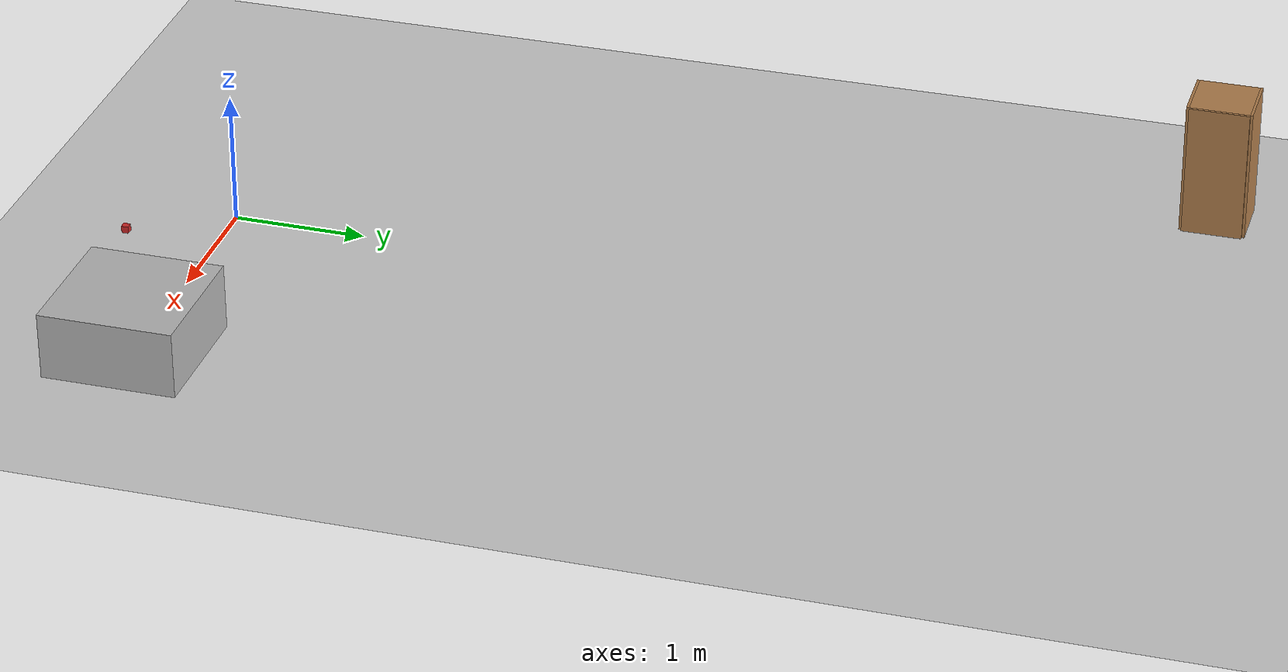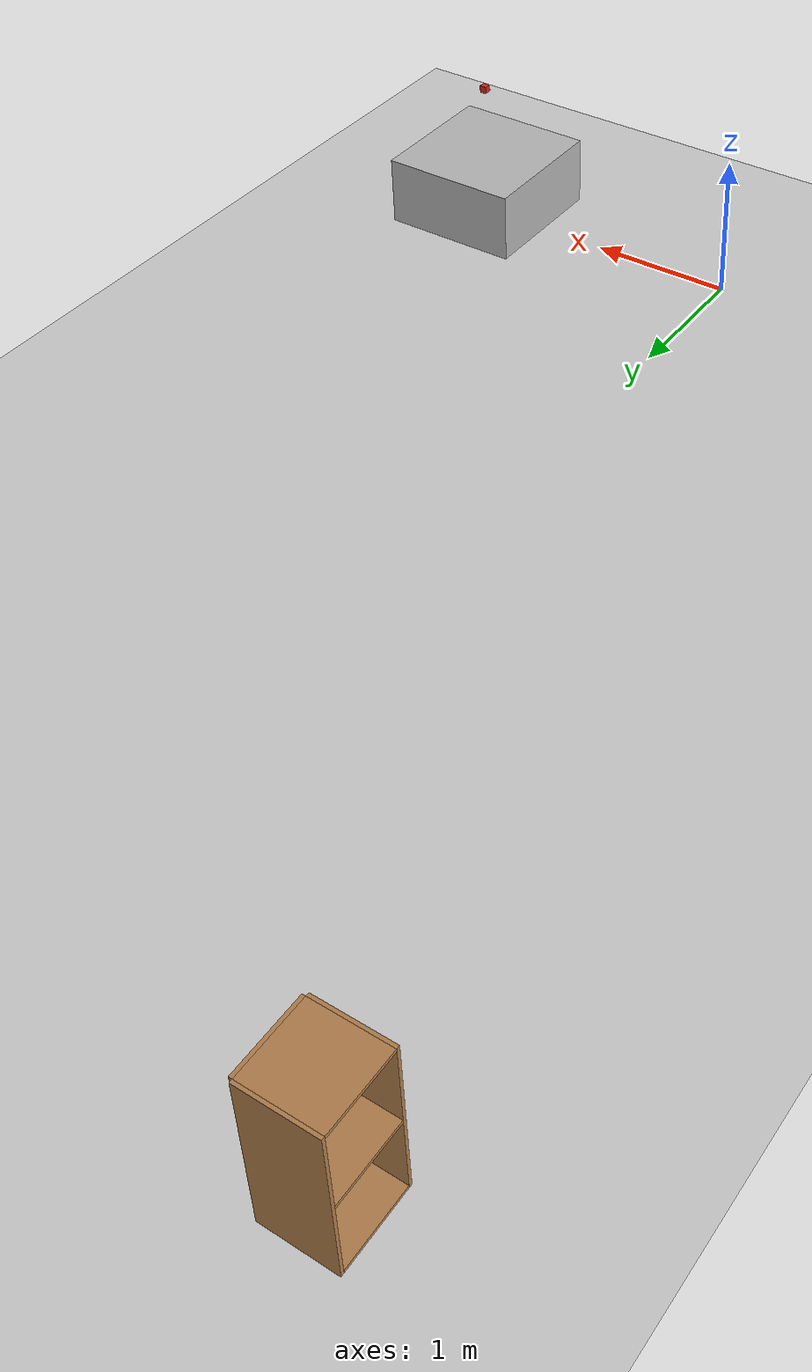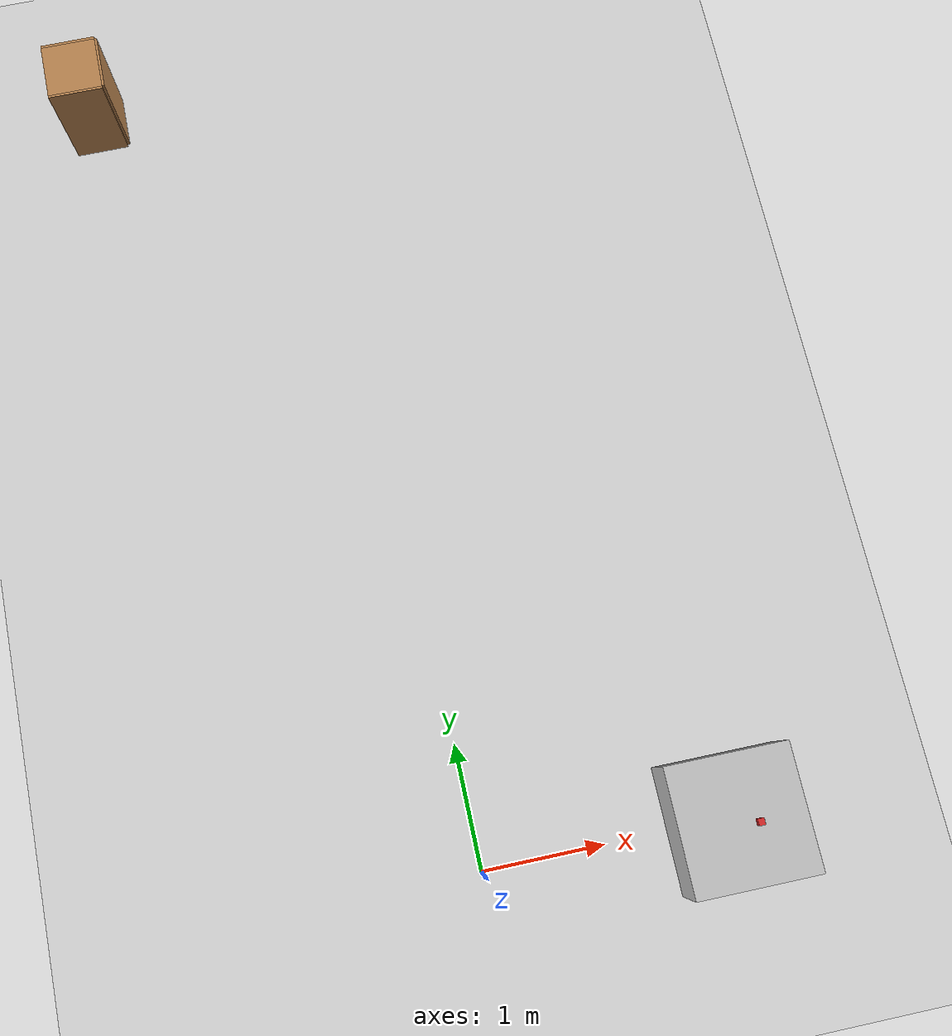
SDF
<sdf version="1.4">
 <world name="default">
  <model name="ground_plane">
   <static>1</static>
   <link name="link">
    <collision name="collision">
     <geometry><plane><normal>0 0 1</normal><size>100 100</size></plane></geometry>
     <surface><friction><ode><mu>100</mu><mu2>50</mu2></ode></friction></surface>
    </collision>
    <visual name="visual">
     <cast_shadows>0</cast_shadows>
     <geometry><plane><normal>0 0 1</normal><size>100 100</size></plane></geometry>
     <material>
      <script><uri>file://media/materials/scripts/gazebo.material</uri><name>Gazebo/Grey</name></script>
     </material>
    </visual>
    <velocity_decay><linear>0</linear><angular>0</angular></velocity_decay>
   </link>
  </model>
  <light name="sun" type="directional">
   <pose>0 0 10 0 -0 0</pose>
   <diffuse>0.8 0.8 0.8 1</diffuse>
   <specular>0.2 0.2 0.2 1</specular>
   <attenuation>
    <range>1000</range>
    <constant>0.9</constant>
    <linear>0.01</linear>
    <quadratic>0.001</quadratic>
   </attenuation>
   <direction>-0.5 0.1 -0.9</direction>
  </light>
  <model name="cabinet">
   <static>1</static>
   <link name="cabinet_bottom_plate">
    <inertial>
     <pose>0 0 -1 0 -0 0</pose>
     <inertia><ixx>2.05</ixx><ixy>0</ixy><ixz>0</ixz><iyy>2.05</iyy><iyz>0</iyz><izz>2.05</izz></inertia>
     <mass>25</mass>
    </inertial>
    <collision name="cabinet_bottom_plate_geom">
     <pose>0 0 0.01 0 -0 0</pose>
     <geometry><box><size>0.45 0.45 0.02</size></box></geometry>
    </collision>
    <visual name="cabinet_bottom_plate_geom_visual">
     <pose>0 0 0.01 0 -0 0</pose>
     <geometry><box><size>0.45 0.45 0.02</size></box></geometry>
     <material>
      <script><uri>file://media/materials/scripts/gazebo.material</uri><name>Gazebo/Wood</name></script>
     </material>
    </visual>
    <collision name="cabinet_bottom_plate_geom_cabinet_back_plate">
     <pose>0.235 0 0.51 0 -0 0</pose>
     <geometry><box><size>0.02 0.45 1.02</size></box></geometry>
    </collision>
    <visual name="cabinet_bottom_plate_geom_cabinet_back_plate_visual">
     <pose>0.235 0 0.51 0 -0 0</pose>
     <geometry><box><size>0.02 0.45 1.02</size></box></geometry>
     <material>
      <script><uri>file://media/materials/scripts/gazebo.material</uri><name>Gazebo/Wood</name></script>
     </material>
    </visual>
    <collision name="cabinet_bottom_plate_geom_cabinet_left_plate">
     <pose>0 0.235 0.51 0 -0 0</pose>
     <geometry><box><size>0.45 0.02 1.02</size></box></geometry>
    </collision>
    <visual name="cabinet_bottom_plate_geom_cabinet_left_plate_visual">
     <pose>0 0.235 0.51 0 -0 0</pose>
     <geometry><box><size>0.45 0.02 1.02</size></box></geometry>
     <material>
      <script><uri>file://media/materials/scripts/gazebo.material</uri><name>Gazebo/Wood</name></script>
     </material>
    </visual>
    <collision name="cabinet_bottom_plate_geom_cabinet_middle_plate">
     <pose>0 0 0.51 0 -0 0</pose>
     <geometry><box><size>0.45 0.45 0.02</size></box></geometry>
    </collision>
    <visual name="cabinet_bottom_plate_geom_cabinet_middle_plate_visual">
     <pose>0 0 0.51 0 -0 0</pose>
     <geometry><box><size>0.45 0.45 0.02</size></box></geometry>
     <material>
      <script><uri>file://media/materials/scripts/gazebo.material</uri><name>Gazebo/Wood</name></script>
     </material>
    </visual>
    <collision name="cabinet_bottom_plate_geom_cabinet_right_plate">
     <pose>0 -0.235 0.51 0 -0 0</pose>
     <geometry><box><size>0.45 0.02 1.02</size></box></geometry>
    </collision>
    <visual name="cabinet_bottom_plate_geom_cabinet_right_plate_visual">
     <pose>0 -0.235 0.51 0 -0 0</pose>
     <geometry><box><size>0.45 0.02 1.02</size></box></geometry>
     <material>
      <script><uri>file://media/materials/scripts/gazebo.material</uri><name>Gazebo/Wood</name></script>
     </material>
    </visual>
    <collision name="cabinet_bottom_plate_geom_cabinet_top_plate">
     <pose>0 0 1.01 0 -0 0</pose>
     <geometry><box><size>0.45 0.45 0.02</size></box></geometry>
    </collision>
    <visual name="cabinet_bottom_plate_geom_cabinet_top_plate_visual">
     <pose>0 0 1.01 0 -0 0</pose>
     <geometry><box><size>0.45 0.45 0.02</size></box></geometry>
     <material>
      <script><uri>file://media/materials/scripts/gazebo.material</uri><name>Gazebo/Wood</name></script>
     </material>
    </visual>
    <velocity_decay><linear>0</linear><angular>0</angular></velocity_decay>
   </link>
   <pose>-2 7 0 0 -0 0</pose>
  </model>
  <physics type="ode">
   <max_step_size>0.001</max_step_size>
   <real_time_factor>1</real_time_factor>
   <real_time_update_rate>1000</real_time_update_rate>
   <gravity>0 0 -9.8</gravity>
  </physics>
  <scene><ambient>0.4 0.4 0.4 1</ambient><background>0.7 0.7 0.7 1</background><shadows>1</shadows></scene>
  <spherical_coordinates>
   <surface_model>EARTH_WGS84</surface_model>
   <latitude_deg>0</latitude_deg>
   <longitude_deg>0</longitude_deg>
   <elevation>0</elevation>
   <heading_deg>0</heading_deg>
  </spherical_coordinates>
  <model name="table">
   <link name="my_box">
    <inertial>
     <pose>2 0 0 0 -0 0</pose>
     <mass>1</mass>
     <inertia><ixx>1</ixx><ixy>0</ixy><ixz>0</ixz><iyy>100</iyy><iyz>0</iyz><izz>1</izz></inertia>
    </inertial>
    <collision name="my_box_collision">
     <pose>2 0 0.25 0 -0 0</pose>
     <geometry><box><size>1 1 0.5</size></box></geometry>
    </collision>
    <visual name="my_box_visual">
     <pose>2 0 0.25 0 -0 0</pose>
     <geometry><box><size>1 1 0.5</size></box></geometry>
    </visual>
    <velocity_decay><linear>0</linear><angular>0</angular></velocity_decay>
   </link>
   <pose>1e-06 -0 -0.001372 0 -0.000914 0</pose>
   <static>0</static>
  </model>
  <model name="ceilingCamera">
   <link name="ceilingCamera_camera_link">
    <pose>2 0 1 3.14159 1.57079 3.14159</pose>
    <inertial>
     <mass>1e-05</mass>
     <inertia><ixx>1e-06</ixx><ixy>0</ixy><ixz>0</ixz><iyy>1e-06</iyy><iyz>0</iyz><izz>1e-06</izz></inertia>
    </inertial>
    <collision name="ceilingCamera_camera_link_collision">
     <geometry><box><size>0.05 0.05 0.05</size></box></geometry>
     <surface><friction><ode><mu>0.2</mu><mu2>0.2</mu2></ode></friction></surface>
    </collision>
    <visual name="ceilingCamera_camera_link_visual">
     <geometry><box><size>0.05 0.05 0.05</size></box></geometry>
     <material><script><name>Gazebo/Red</name><uri>__default__</uri></script></material>
    </visual>
    <velocity_decay><linear>0</linear><angular>0</angular></velocity_decay>
    <velocity_decay><linear>0</linear><angular>0</angular></velocity_decay>
    <sensor name="camera1" type="camera">
     <update_rate>30</update_rate>
     <camera name="ceilingCamera_head">
      <horizontal_fov>1.39626</horizontal_fov>
      <image><width>800</width><height>800</height><format>R8G8B8</format></image>
      <clip><near>0.02</near><far>300</far></clip>
      <noise><type>gaussian</type><mean>0</mean><stddev>0.007</stddev></noise>
     </camera>
     <plugin name="ceilingCamera_camera_controller" filename="libgazebo_ros_camera.so">
      <alwaysOn>true</alwaysOn>
      <updateRate>0.0</updateRate>
      <robotNamespace>ceilingCamera</robotNamespace>
      <cameraName>ceilingCamera_camera1</cameraName>
      <imageTopicName>image_raw</imageTopicName>
      <cameraInfoTopicName>camera_info</cameraInfoTopicName>
      <frameName>ceilingCamera_camera_link</frameName>
      <hackBaseline>0.07</hackBaseline>
      <distortionK1>0.0</distortionK1>
      <distortionK2>0.0</distortionK2>
      <distortionK3>0.0</distortionK3>
      <distortionT1>0.0</distortionT1>
      <distortionT2>0.0</distortionT2>
     </plugin>
    </sensor>
   </link>
   <joint name="ceilingCamera_camera_joint" type="revolute">
    <child>ceilingCamera_camera_link</child>
    <parent>world</parent>
    <axis>
     <limit><lower>0</lower><upper>0</upper></limit>
     <dynamics><damping>0</damping></dynamics>
     <xyz>0 0 1</xyz>
    </axis>
   </joint>
   <static>0</static>
  </model>
 </world>
</sdf>
